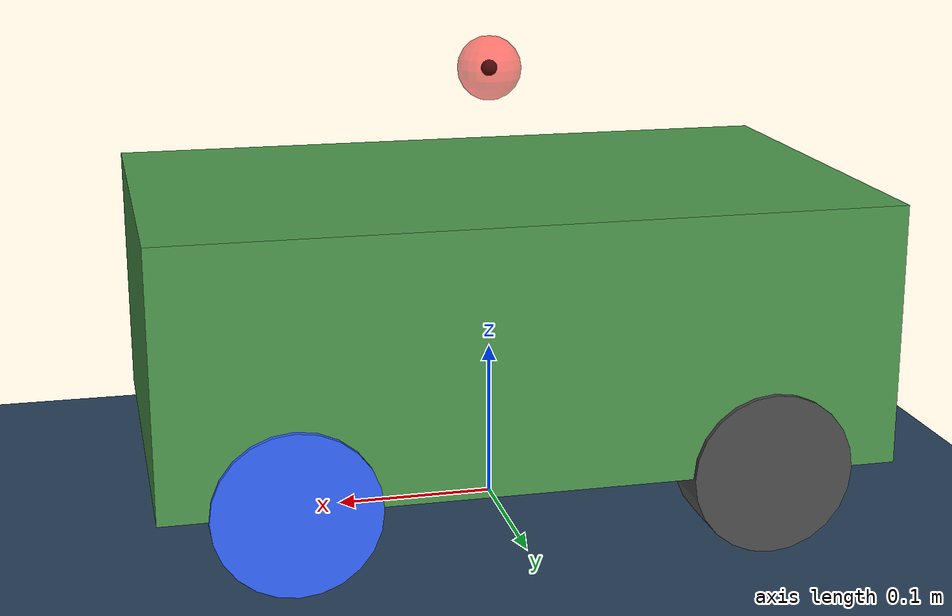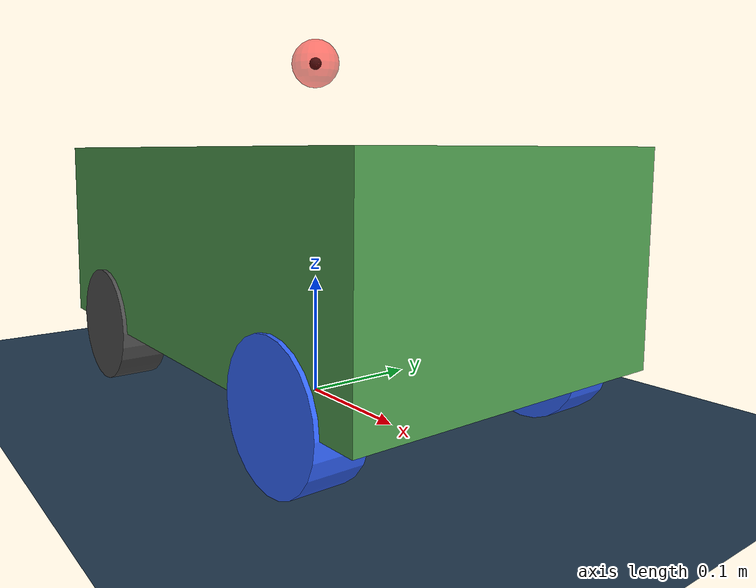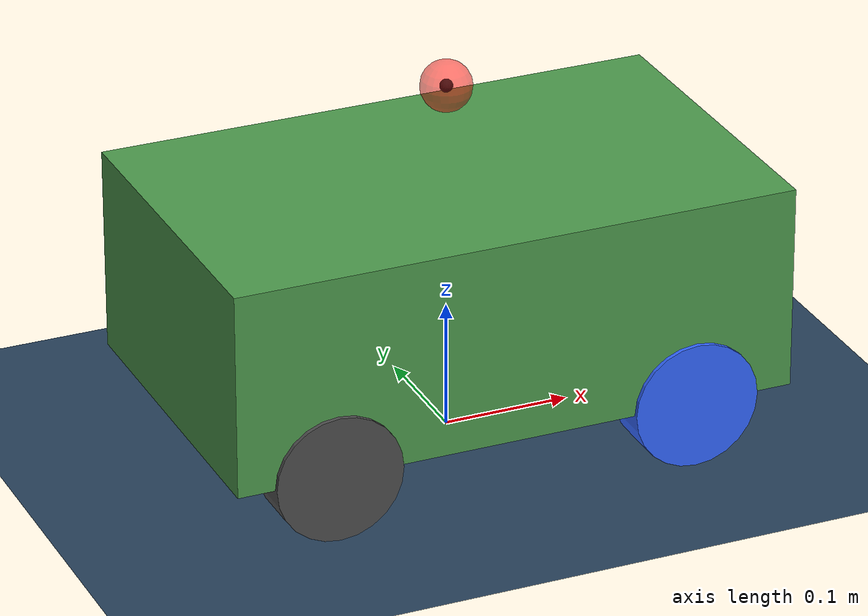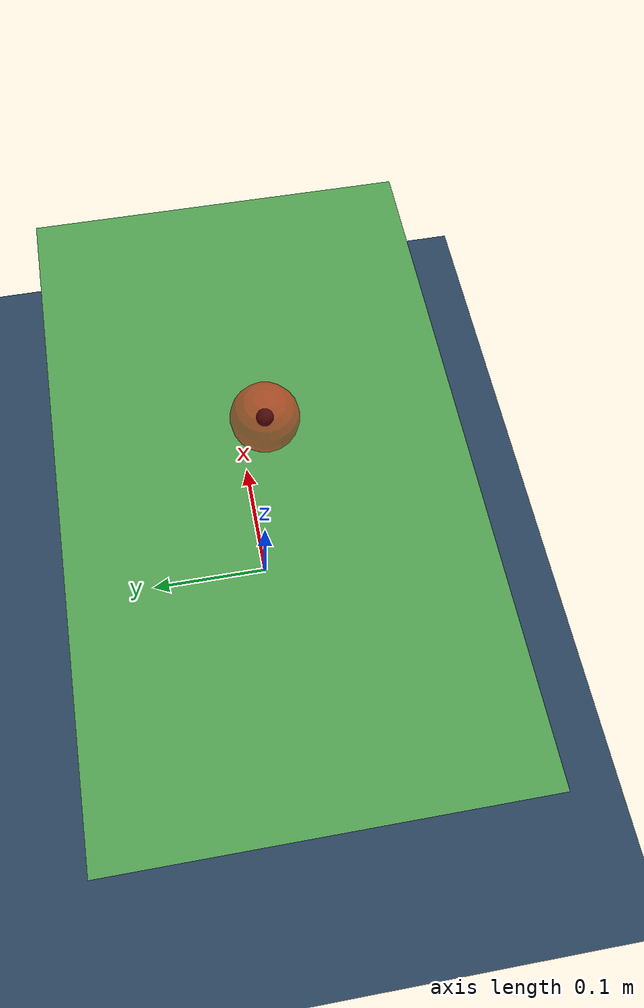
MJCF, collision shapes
<mujoco model="neoracer">

    <compiler angle="radian" autolimits="true"/>

    <asset>
        <texture name="grid" type="2d" builtin="checker" width="512" height="512"
                 rgb1=".1 .2 .3" rgb2=".2 .3 .4"/>
        <material name="grid" texture="grid" texrepeat="1 1" texuniform="true"
                  reflectance=".2"/>

        <mesh name="vis_chassis"  file="../assets/chassis.STL"/>
        <mesh name="vis_fl_wheel" file="../assets/fl_wheel.STL"/>
        <mesh name="vis_fr_wheel" file="../assets/fr_wheel.STL"/>
        <mesh name="vis_rl_wheel" file="../assets/rl_wheel.STL"/>
        <mesh name="vis_rr_wheel" file="../assets/rr_wheel.STL"/>
        <mesh name="vis_lidar"    file="../assets/lidar.STL"/>
    </asset>

    <default>
        <!-- EXTRACTED: default joint settings from amogh_car.xml -->
        <joint damping=".03" actuatorfrcrange="-3 3"/>

        <default class="wheel">
            <joint type="hinge" axis="0 1 0" armature=".005" damping=".0005"/>
            <geom type="cylinder" size=".050 .02" zaxis="0 1 0"
                  friction="1.5 0.1 0.1" condim="3"/>
        </default>

        <default class="steer">
            <joint type="hinge" axis="0 0 1" limited="true" range="-.55 .55"
                   damping=".001" armature=".0002" frictionloss=".01"
                   actuatorfrcrange="-100 100"/>
        </default>

        <default class="susp">
            <joint type="slide" axis="0 0 1" range="-.010 .015"
                   stiffness="600" damping="25"/>
        </default>
    </default>

    <worldbody>
        <!-- ESTIMATED: ground friction matches wheel friction -->
        <geom type="plane" size="5 5 .01" material="grid" friction="1.5 0.1 0.1"/>

        <body name="car" pos="0 0 .1306">
            <freejoint/>
            <light name="top_light" pos="0 0 2" mode="trackcom" diffuse=".4 .4 .4"/>

            <geom name="chassis" type="box" size=".223 .134 .0806"
                  rgba=".3 .6 .3 0.1" mass="2.0"/>
            <!-- Visual chassis — contype/conaffinity=0 → zero physics interaction.
                 pos: base_link origin is +33mm fwd, +22mm above car-body centre (URDF joints). -->
            <geom name="vis_chassis" type="mesh" mesh="vis_chassis"
                  pos="0.033 0 0.022"
                  contype="0" conaffinity="0"
                  rgba=".75 .75 .75 1"/>

            <site name="imu" pos="0 0 0" size=".01" rgba="1 1 0 1"/>

            <site name="lidar_mount" pos="0 0 .15" size=".02" rgba="1 0 0 .5"/>

            <site name="lidar_000" pos="0 0 .15" euler="0 90   0" size=".005"/>
            <site name="lidar_045" pos="0 0 .15" euler="0 90  45" size=".005"/>
            <site name="lidar_090" pos="0 0 .15" euler="0 90  90" size=".005"/>
            <site name="lidar_135" pos="0 0 .15" euler="0 90 135" size=".005"/>
            <site name="lidar_180" pos="0 0 .15" euler="0 90 180" size=".005"/>
            <site name="lidar_225" pos="0 0 .15" euler="0 90 225" size=".005"/>
            <site name="lidar_270" pos="0 0 .15" euler="0 90 270" size=".005"/>
            <site name="lidar_315" pos="0 0 .15" euler="0 90 315" size=".005"/>
            <!-- Visual lidar sensor at mount site. -->
            <geom name="vis_lidar" type="mesh" mesh="vis_lidar"
                  pos="0 0 0.15"
                  contype="0" conaffinity="0" rgba=".2 .2 .2 1"/>

            <body name="steer_input_body" pos=".1439 0 .05">
                <joint name="steer_input" class="steer" range="-.45 .45"/>
                <geom type="cylinder" size=".02 .005" contype="0" conaffinity="0"
                      mass=".01" rgba="1 0 0 .3"/>
            </body>

            <body name="fl_wheel_body" pos=".1439 .1175 -.0806">
                <joint name="fl_susp"  class="susp"/>
                <joint name="fl_steer" class="steer"/>
                <joint name="fl_drive" class="wheel"/>
                <geom class="wheel" mass=".15" rgba=".2 .4 1 0.1"/>
                <geom name="vis_fl_wheel" type="mesh" mesh="vis_fl_wheel"
                      contype="0" conaffinity="0" rgba=".15 .15 .15 1"/>
            </body>

            <!-- FRONT RIGHT WHEEL — steerable + driven -->
            <body name="fr_wheel_body" pos=".1439 -.1175 -.0806">
                <joint name="fr_susp"  class="susp"/>
                <joint name="fr_steer" class="steer"/>
                <joint name="fr_drive" class="wheel"/>
                <geom class="wheel" mass=".15" rgba=".2 .4 1 0.1"/>
                <geom name="vis_fr_wheel" type="mesh" mesh="vis_fr_wheel"
                      contype="0" conaffinity="0" rgba=".15 .15 .15 1"/>
            </body>

            <!-- REAR LEFT WHEEL — driven only (no steer joint) -->
            <body name="rl_wheel_body" pos="-.1439 .1175 -.0806">
                <joint name="rl_susp"  class="susp"/>
                <joint name="rl_drive" class="wheel"/>
                <geom class="wheel" mass=".15" rgba=".3 .3 .3 0.1"/>
                <geom name="vis_rl_wheel" type="mesh" mesh="vis_rl_wheel"
                      contype="0" conaffinity="0" rgba=".15 .15 .15 1"/>
            </body>

            <!-- REAR RIGHT WHEEL — driven only -->
            <body name="rr_wheel_body" pos="-.1439 -.1175 -.0806">
                <joint name="rr_susp"  class="susp"/>
                <joint name="rr_drive" class="wheel"/>
                <geom class="wheel" mass=".15" rgba=".3 .3 .3 0.1"/>
                <geom name="vis_rr_wheel" type="mesh" mesh="vis_rr_wheel"
                      contype="0" conaffinity="0" rgba=".15 .15 .15 1"/>
            </body>

        </body>
    </worldbody>

    <actuator>
        <motor name="fl_motor" joint="fl_drive" gear="1" ctrlrange="-1 1"/>
        <motor name="fr_motor" joint="fr_drive" gear="1" ctrlrange="-1 1"/>
        <motor name="rl_motor" joint="rl_drive" gear="1" ctrlrange="-1 1"/>
        <motor name="rr_motor" joint="rr_drive" gear="1" ctrlrange="-1 1"/>

        <position name="steer_servo" joint="steer_input" kp="25" ctrlrange="-.4 .4"/>
    </actuator>

    <equality>
        <joint name="ackermann_left"
               joint1="fl_steer" joint2="steer_input"
               polycoef="0 1.00094002 0.40919761 0.14051837 -0.08873218"/>
        <joint name="ackermann_right"
               joint1="fr_steer" joint2="steer_input"
               polycoef="0 1.00094002 -0.40919761 0.14051837 0.08873218"/>
    </equality>

    <sensor>
        <accelerometer name="imu_accel"  site="imu"/>
        <gyro          name="imu_gyro"   site="imu"/>
        <framequat     name="imu_quat"   objtype="site" objname="imu"/>
        <framelinvel   name="imu_linvel" objtype="site" objname="imu"/>

        <jointpos name="steer_cmd_pos" joint="steer_input"/>
        <jointpos name="fl_steer_pos"  joint="fl_steer"/>
        <jointpos name="fr_steer_pos"  joint="fr_steer"/>

        <!--
        Wheel angular velocity (rad/s). Multiply by 0.050 m (wheel_radius) for surface speed in m/s.
        Positive = forward rotation.
        -->
        <jointvel name="fl_wheel_vel" joint="fl_drive"/>
        <jointvel name="fr_wheel_vel" joint="fr_drive"/>
        <jointvel name="rl_wheel_vel" joint="rl_drive"/>
        <jointvel name="rr_wheel_vel" joint="rr_drive"/>

        <jointpos name="fl_susp_pos" joint="fl_susp"/>
        <jointpos name="fr_susp_pos" joint="fr_susp"/>
        <jointpos name="rl_susp_pos" joint="rl_susp"/>
        <jointpos name="rr_susp_pos" joint="rr_susp"/>

        <rangefinder name="lidar_000" site="lidar_000"/>
        <rangefinder name="lidar_045" site="lidar_045"/>
        <rangefinder name="lidar_090" site="lidar_090"/>
        <rangefinder name="lidar_135" site="lidar_135"/>
        <rangefinder name="lidar_180" site="lidar_180"/>
        <rangefinder name="lidar_225" site="lidar_225"/>
        <rangefinder name="lidar_270" site="lidar_270"/>
        <rangefinder name="lidar_315" site="lidar_315"/>
    </sensor>

</mujoco>
